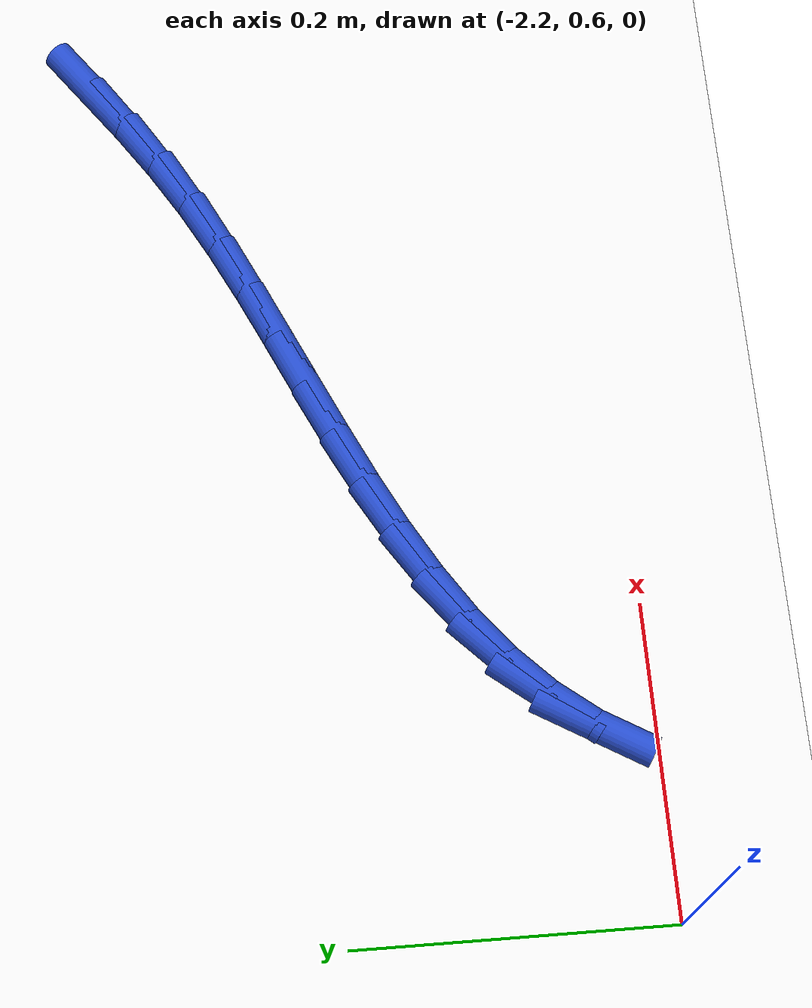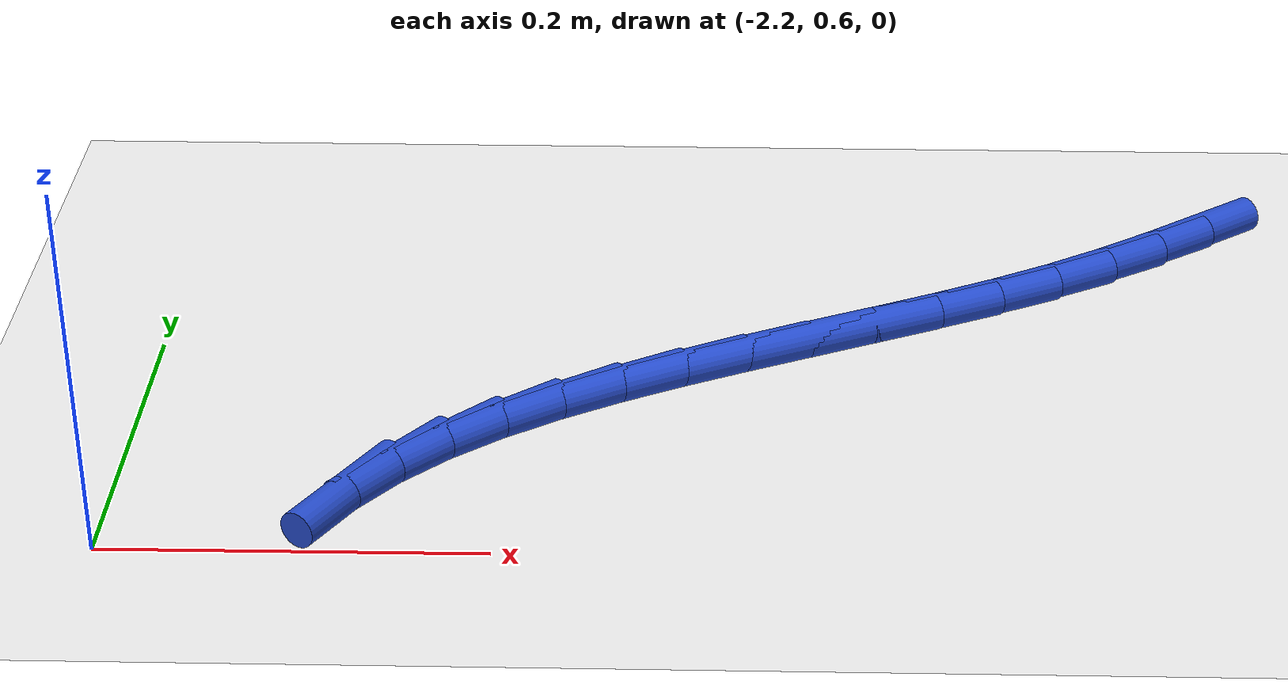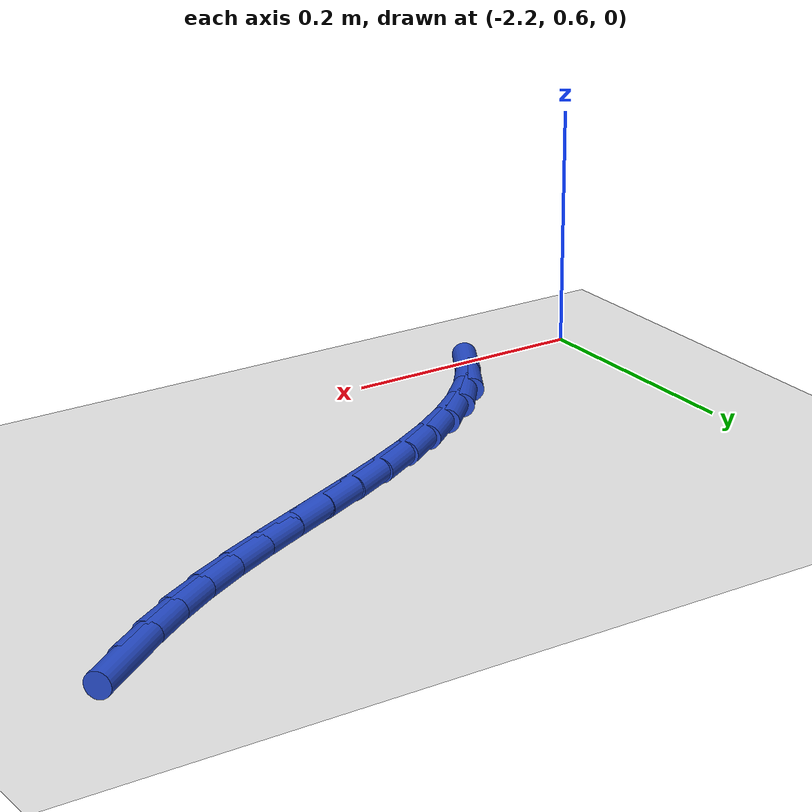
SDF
<sdf version="1.6">
 <world name="default">
  <model name="ground_plane">
   <static>1</static>
   <link name="link">
    <collision name="collision">
     <geometry><plane><normal>0 0 1</normal><size>100 100</size></plane></geometry>
     <surface><friction><ode><mu>100</mu><mu2>50</mu2></ode></friction></surface>
    </collision>
    <visual name="visual">
     <cast_shadows>0</cast_shadows>
     <geometry><plane><normal>0 0 1</normal><size>100 100</size></plane></geometry>
     <material>
      <script><uri>file://media/materials/scripts/gazebo.material</uri><name>Gazebo/WhiteGlow</name></script>
     </material>
    </visual>
   </link>
  </model>
  <model name="line">
   <link name="link_63">
    <pose>-1.6132822011074246 0.9274086344832152 0.01 0 1.57 0.6363223212516911</pose>
    <collision name="collision">
     <geometry><cylinder><radius>0.01</radius><length>0.08</length></cylinder></geometry>
    </collision>
    <visual name="visual">
     <material>
      <script><name>Gazebo/Blue</name><uri>file://media/materials/scripts/gazebo.material</uri></script>
     </material>
     <geometry><cylinder><radius>0.01</radius><length>0.08</length></cylinder></geometry>
    </visual>
   </link>
   <link name="link_64">
    <pose>-1.6424030847460902 0.9058928727836851 0.01 0 1.57 0.6011304146199199</pose>
    <collision name="collision">
     <geometry><cylinder><radius>0.01</radius><length>0.08</length></cylinder></geometry>
    </collision>
    <visual name="visual">
     <material>
      <script><name>Gazebo/Blue</name><uri>file://media/materials/scripts/gazebo.material</uri></script>
     </material>
     <geometry><cylinder><radius>0.01</radius><length>0.08</length></cylinder></geometry>
    </visual>
   </link>
   <link name="link_65">
    <pose>-1.6724900957789928 0.8852592731001229 0.01 0 1.57 0.5547598329576889</pose>
    <collision name="collision">
     <geometry><cylinder><radius>0.01</radius><length>0.08</length></cylinder></geometry>
    </collision>
    <visual name="visual">
     <material>
      <script><name>Gazebo/Blue</name><uri>file://media/materials/scripts/gazebo.material</uri></script>
     </material>
     <geometry><cylinder><radius>0.01</radius><length>0.08</length></cylinder></geometry>
    </visual>
   </link>
   <link name="link_66">
    <pose>-1.703909278176348 0.8657896391444267 0.01 0 1.57 0.5032496964035219</pose>
    <collision name="collision">
     <geometry><cylinder><radius>0.01</radius><length>0.08</length></cylinder></geometry>
    </collision>
    <visual name="visual">
     <material>
      <script><name>Gazebo/Blue</name><uri>file://media/materials/scripts/gazebo.material</uri></script>
     </material>
     <geometry><cylinder><radius>0.01</radius><length>0.08</length></cylinder></geometry>
    </visual>
   </link>
   <link name="link_67">
    <pose>-1.736869513401699 0.8476440551586433 0.01 0 1.57 0.46383352152101903</pose>
    <collision name="collision">
     <geometry><cylinder><radius>0.01</radius><length>0.08</length></cylinder></geometry>
    </collision>
    <visual name="visual">
     <material>
      <script><name>Gazebo/Blue</name><uri>file://media/materials/scripts/gazebo.material</uri></script>
     </material>
     <geometry><cylinder><radius>0.01</radius><length>0.08</length></cylinder></geometry>
    </visual>
   </link>
   <link name="link_68">
    <pose>-1.7710292048929783 0.8305562702820016 0.01 0 1.57 0.43907663207008074</pose>
    <collision name="collision">
     <geometry><cylinder><radius>0.01</radius><length>0.08</length></cylinder></geometry>
    </collision>
    <visual name="visual">
     <material>
      <script><name>Gazebo/Blue</name><uri>file://media/materials/scripts/gazebo.material</uri></script>
     </material>
     <geometry><cylinder><radius>0.01</radius><length>0.08</length></cylinder></geometry>
    </visual>
   </link>
   <link name="link_69">
    <pose>-1.805926301827265 0.8141667440448871 0.01 0 1.57 0.4281187249552982</pose>
    <collision name="collision">
     <geometry><cylinder><radius>0.01</radius><length>0.08</length></cylinder></geometry>
    </collision>
    <visual name="visual">
     <material>
      <script><name>Gazebo/Blue</name><uri>file://media/materials/scripts/gazebo.material</uri></script>
     </material>
     <geometry><cylinder><radius>0.01</radius><length>0.08</length></cylinder></geometry>
    </visual>
   </link>
   <link name="link_70">
    <pose>-1.8410987533816388 0.7981159359776856 0.01 0 1.57 0.43062392808560934</pose>
    <collision name="collision">
     <geometry><cylinder><radius>0.01</radius><length>0.08</length></cylinder></geometry>
    </collision>
    <visual name="visual">
     <material>
      <script><name>Gazebo/Blue</name><uri>file://media/materials/scripts/gazebo.material</uri></script>
     </material>
     <geometry><cylinder><radius>0.01</radius><length>0.08</length></cylinder></geometry>
    </visual>
   </link>
   <link name="link_71">
    <pose>-1.8760845087331781 0.7820443056107813 0.01 0 1.57 0.44681507200156456</pose>
    <collision name="collision">
     <geometry><cylinder><radius>0.01</radius><length>0.08</length></cylinder></geometry>
    </collision>
    <visual name="visual">
     <material>
      <script><name>Gazebo/Blue</name><uri>file://media/materials/scripts/gazebo.material</uri></script>
     </material>
     <geometry><cylinder><radius>0.01</radius><length>0.08</length></cylinder></geometry>
    </visual>
   </link>
   <link name="link_72">
    <pose>-1.910421517058962 0.7655923124745602 0.01 0 1.57 0.4774860670784041</pose>
    <collision name="collision">
     <geometry><cylinder><radius>0.01</radius><length>0.08</length></cylinder></geometry>
    </collision>
    <visual name="visual">
     <material>
      <script><name>Gazebo/Blue</name><uri>file://media/materials/scripts/gazebo.material</uri></script>
     </material>
     <geometry><cylinder><radius>0.01</radius><length>0.08</length></cylinder></geometry>
    </visual>
   </link>
   <link name="link_73">
    <pose>-1.9436477275360695 0.7484004160994076 0.01 0 1.57 0.5239840310364703</pose>
    <collision name="collision">
     <geometry><cylinder><radius>0.01</radius><length>0.08</length></cylinder></geometry>
    </collision>
    <visual name="visual">
     <material>
      <script><name>Gazebo/Blue</name><uri>file://media/materials/scripts/gazebo.material</uri></script>
     </material>
     <geometry><cylinder><radius>0.01</radius><length>0.08</length></cylinder></geometry>
    </visual>
   </link>
   <link name="link_74">
    <pose>-1.9753010893415806 0.7301090760157085 0.01 0 1.57 0.5881120503958672</pose>
    <collision name="collision">
     <geometry><cylinder><radius>0.01</radius><length>0.08</length></cylinder></geometry>
    </collision>
    <visual name="visual">
     <material>
      <script><name>Gazebo/Blue</name><uri>file://media/materials/scripts/gazebo.material</uri></script>
     </material>
     <geometry><cylinder><radius>0.01</radius><length>0.08</length></cylinder></geometry>
    </visual>
   </link>
   <link name="link_75">
    <pose>-2.0049195516525726 0.7103587517538481 0.01 0 1.57 0.6718484188462909</pose>
    <collision name="collision">
     <geometry><cylinder><radius>0.01</radius><length>0.08</length></cylinder></geometry>
    </collision>
    <visual name="visual">
     <material>
      <script><name>Gazebo/Blue</name><uri>file://media/materials/scripts/gazebo.material</uri></script>
     </material>
     <geometry><cylinder><radius>0.01</radius><length>0.08</length></cylinder></geometry>
    </visual>
   </link>
   <link name="link_76">
    <pose>-2.0320410636461257 0.688789902844212 0.01 0 1.57 0.7767237448834062</pose>
    <collision name="collision">
     <geometry><cylinder><radius>0.01</radius><length>0.08</length></cylinder></geometry>
    </collision>
    <visual name="visual">
     <material>
      <script><name>Gazebo/Blue</name><uri>file://media/materials/scripts/gazebo.material</uri></script>
     </material>
     <geometry><cylinder><radius>0.01</radius><length>0.08</length></cylinder></geometry>
    </visual>
   </link>
   <link name="link_77">
    <pose>-2.0562035744993183 0.6650429888171852 0.01 0 1.57 0.9027290187404556</pose>
    <collision name="collision">
     <geometry><cylinder><radius>0.01</radius><length>0.08</length></cylinder></geometry>
    </collision>
    <visual name="visual">
     <material>
      <script><name>Gazebo/Blue</name><uri>file://media/materials/scripts/gazebo.material</uri></script>
     </material>
     <geometry><cylinder><radius>0.01</radius><length>0.08</length></cylinder></geometry>
    </visual>
   </link>
   <link name="link_78">
    <pose>-2.076945034959456 0.638758470437547 0.01 0 1.57 1.040788126843792</pose>
    <collision name="collision">
     <geometry><cylinder><radius>0.01</radius><length>0.08</length></cylinder></geometry>
    </collision>
    <visual name="visual">
     <material>
      <script><name>Gazebo/Blue</name><uri>file://media/materials/scripts/gazebo.material</uri></script>
     </material>
     <geometry><cylinder><radius>0.01</radius><length>0.08</length></cylinder></geometry>
    </visual>
   </link>
  </model>
 </world>
</sdf>
